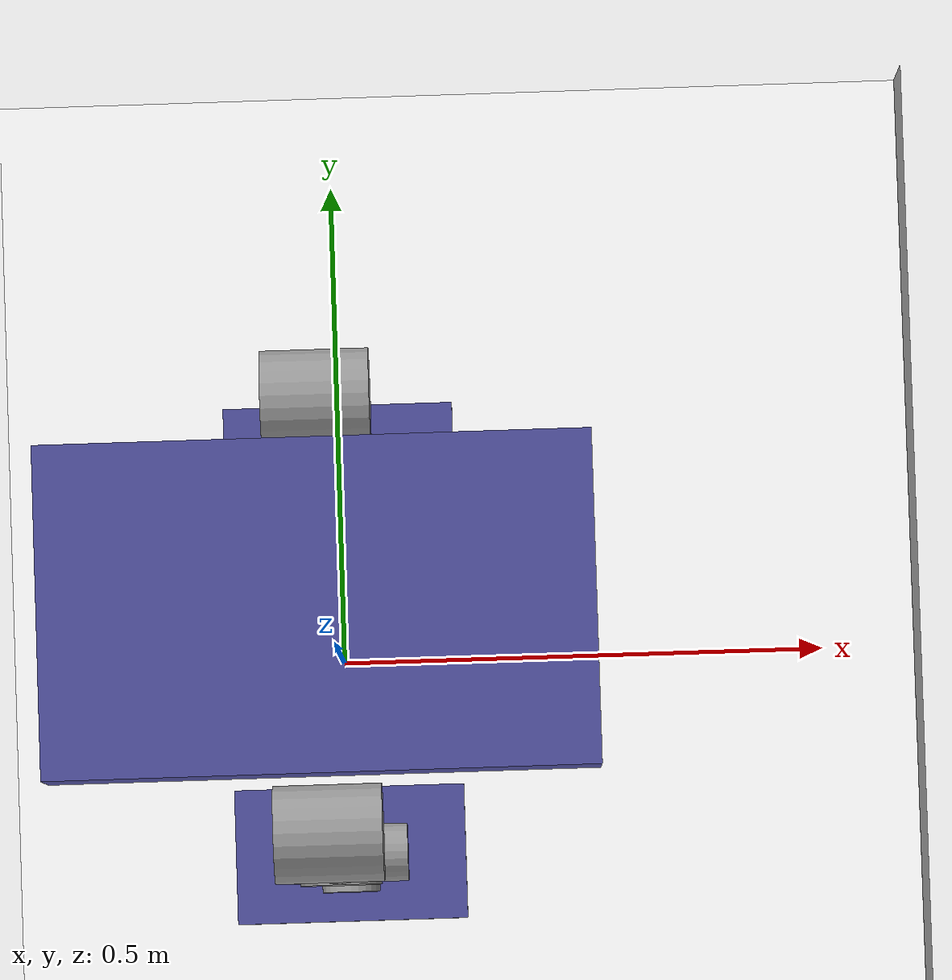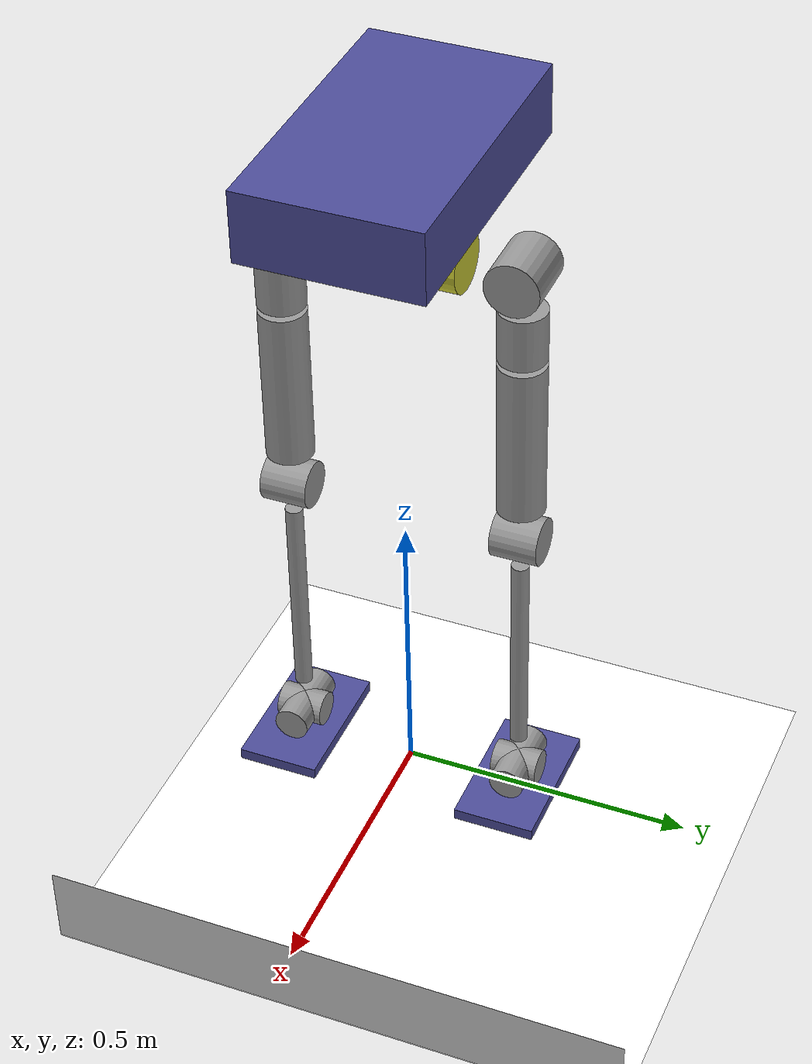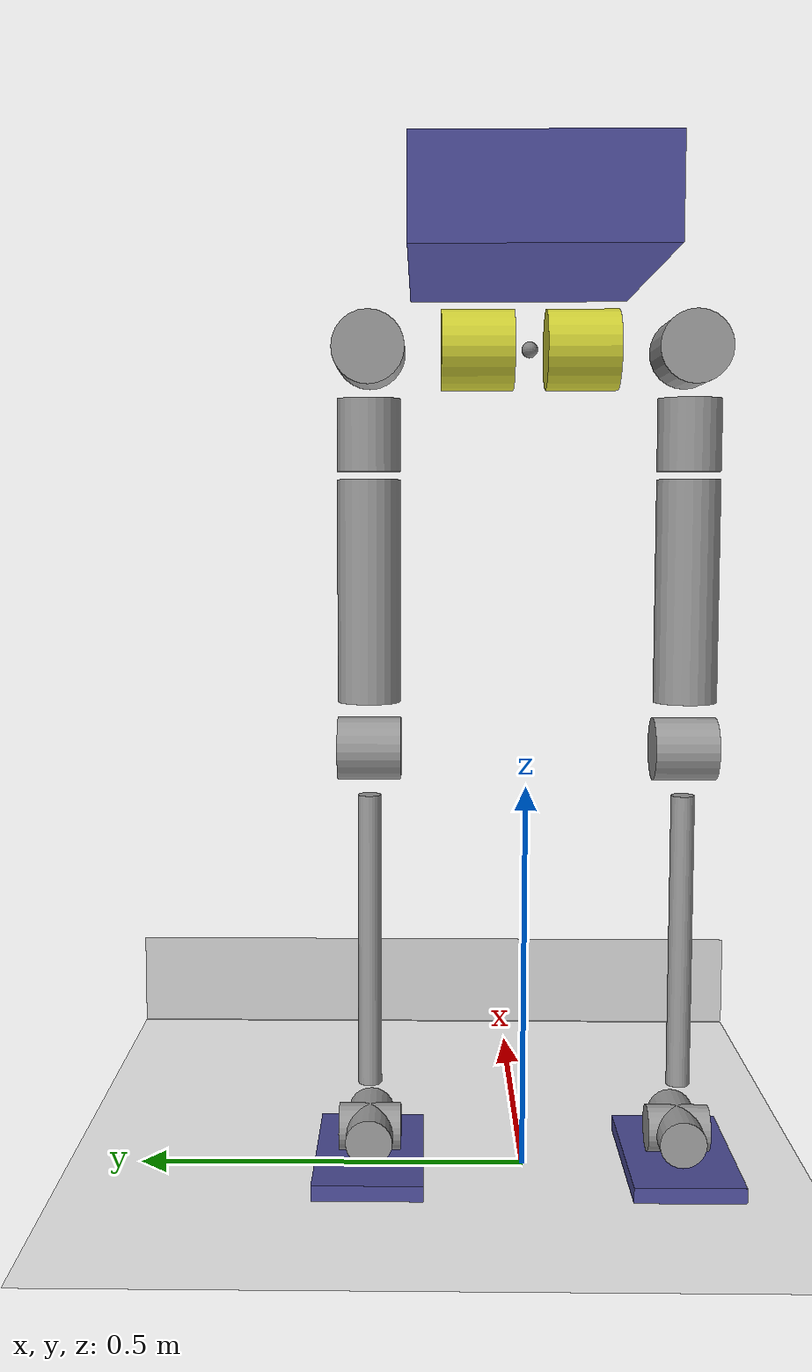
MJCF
<mujoco>

  <include file="zen.xml"/>

  <asset>
    <texture name="texplane" type="2d" builtin="checker" rgb1="1 1 1" rgb2="1 1 1" width="512" height="512" mark="cross" markrgb="0 0 0"/>
    <material name="matplane" reflectance="0.0" texture="texplane" texrepeat="1 1" texuniform="true"/>
  </asset>

  <worldbody>
    <geom group="1" name="floor" pos="0 0 0" size="0 0 0.25" type="plane" material="matplane" condim="3" contype="2" conaffinity="1"/>
    <geom group="1" type="box" pos=" 4.0 0 0.07" size="2.00 2.00 0.07" rgba="0.8 0.8 0.8 1" friction="1 0.005 0.0001" contype="2" conaffinity="1"/>
  </worldbody>

</mujoco>

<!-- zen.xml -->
<mujoco>
  <compiler coordinate="local" angle="degree"/>
  <option timestep="0.001" iterations="100" tolerance="1e-10" solver="Newton" integrator="implicit" gravity="0 0 -9.81"/>

  <visual>
    <map stiffness="2" stiffnessrot="100"/>
    <rgba haze="0.5 0.5 0.5 1"/>
    <quality shadowsize="2048" offsamples="16"/>
    <headlight ambient="0.5 0.5 0.5"  diffuse="0.4 0.4 0.4" specular="0.5 0.5 0.5"/>
  </visual>

  <asset>
    <texture type="skybox" builtin="gradient" rgb1="0.5 0.5 0.5" rgb2="0.5 0.5 0.5" width="512" height="512"/>
  </asset>

  <worldbody>
    <light mode="trackcom" target="model" directional="false" diffuse="0.3 0.3 0.3" specular="0.5 0.5 0.5" pos="4 0 4.0" dir="-1 0 -1" castshadow="true"/>

    <body name="model">
      <freejoint/>
      <geom type="box" pos="0 0 1.2" size="0.25 0.15 0.06" mass="10" rgba="0.3 0.3 0.6 1" contype="1" conaffinity="2"/>

      <site name="ahrs" pos="0 0 1.2" euler="0 0 0" type="sphere" size="0.01"/>
      <site name="base" pos="0 0 1.05" euler="0 0 0" type="sphere" size="0.01"/>

      <body pos="0 0.10 1.05">
	<joint name="joint1" type="hinge" pos="0 0 0" axis="0 -1 0" frictionloss="0.2" damping="0.5"/>
	<geom type="cylinder" fromto="0 -0.08 0 0 0.01 0" size="0.05" euler="90 0 0" mass="1.5" rgba="0.8 0.8 0.2 1" contype="1" conaffinity="2"/>
	<body>
	  <joint name="joint2" type="hinge" pos="0 0.10 0" axis="1 0 0" frictionloss="0.2" damping="0.5"/>
	  <geom type="cylinder" pos="0 0.10 0" euler="0 90 0" size="0.045 0.05" mass="1.5" rgba="0.6 0.6 0.6 1" contype="1" conaffinity="2"/>
	  <body>
	    <joint name="joint3" type="hinge" pos="0 0.10 -0.10" axis="0 0 1" frictionloss="0.2" damping="0.5"/>
	    <geom type="cylinder" fromto="0 0.10 -0.06   0 0.10 -0.15" size="0.04" mass="1.5" rgba="0.6 0.6 0.6 1" contype="1" conaffinity="2"/>
	    <geom type="cylinder" fromto="0 0.10 -0.16  0 0.10 -0.44" size="0.04" mass="1.0" rgba="0.6 0.6 0.6 1" contype="1" conaffinity="2"/>
	    <body>
	      <joint name="joint4" type="hinge" pos="0 0.10 -0.5" axis="0 -1 0" frictionloss="0.2" damping="0.5"/>
	      <geom type="cylinder" pos="0 0.10 -0.5" euler="90 0 0" size="0.04 0.04" mass="1.5" rgba="0.6 0.6 0.6 1" contype="1" conaffinity="2"/>
	      <geom type="cylinder" fromto="0 0.10 -0.56  0 0.10 -0.94" size="0.015" mass="0.5" rgba="0.6 0.6 0.6 1" contype="0" conaffinity="0"/>
	      <body>
		<joint name="joint5" type="hinge" pos="0 0.10 -1.0" axis="0 -1 0" frictionloss="0.2" damping="0.5"/>
		<geom type="cylinder" pos="0 0.10 -1.0" euler="90 0 0" size="0.03 0.04" mass="1.0" rgba="0.6 0.6 0.6 1" contype="0" conaffinity="0"/>
		<body>
		  <joint name="joint6" type="hinge" pos="0 0.10 -1.0" axis="1 0 0" frictionloss="0.2" damping="0.5"/>
		  <geom type="cylinder" pos="0 0.10 -1.0" euler="0 90 0" size="0.03 0.06" mass="0.75" rgba="0.6 0.6 0.6 1" contype="0" conaffinity="0"/>
		  <body>
		    <geom type="box" pos="0 0.10 -1.04" size="0.12 0.07 0.01" mass="0.70" rgba="0.3 0.3 0.6 1" contype="0" conaffinity="0"/>
		    <body>
 		      <geom type="box" pos="0 0.10 -1.04" size="0.12 0.07 0.01" mass="0.05" rgba="0.3 0.3 0.6 1" friction="1 0.005 0.0001" contype="1" conaffinity="2"/>
		      <site name="endtip1" pos="0 0.10 -1.0" euler="0 0 0" type="sphere" size="0.01"/>
		    </body>
		  </body>
		</body>
	      </body>
	    </body>
	  </body>
	</body>
      </body>

      <body pos="0 -0.10 1.05">
	<joint name="joint7" type="hinge" pos="0 0 0" axis="0 -1 0" frictionloss="0.2" damping="0.5"/>
	<geom type="cylinder" fromto="0 -0.01 0 0 0.08 0" size="0.05" euler="90 0 0" mass="1.5" rgba="0.8 0.8 0.2 1" contype="1" conaffinity="2"/>
	<body>
	  <joint name="joint8" type="hinge" pos="0 -0.10 0" axis="-1 0 0" frictionloss="0.2" damping="0.5"/>
	  <geom type="cylinder" pos="0 -0.10 0" euler="0 90 0" size="0.045 0.05" mass="1.5" rgba="0.6 0.6 0.6 1" contype="1" conaffinity="2"/>
	  <body>
	    <joint name="joint9" type="hinge" pos="0 -0.10 -0.10" axis="0 0 -1" frictionloss="0.2" damping="0.5"/>
	    <geom type="cylinder" fromto="0 -0.10 -0.06  0 -0.10 -0.15" size="0.04" mass="1.5" rgba="0.6 0.6 0.6 1" contype="1" conaffinity="2"/>
	    <geom type="cylinder" fromto="0 -0.10 -0.16  0 -0.10 -0.44" size="0.04" mass="1.0" rgba="0.6 0.6 0.6 1" contype="1" conaffinity="2"/>
	    <body>
	      <joint name="joint10" type="hinge" pos="0 -0.10 -0.5" axis="0 -1 0" frictionloss="0.2" damping="0.5"/>
	      <geom type="cylinder" pos="0 -0.10 -0.5" euler="90 0 0" size="0.04 0.04" mass="1.5" rgba="0.6 0.6 0.6 1" contype="1" conaffinity="2"/>
	      <geom type="cylinder" fromto="0 -0.10 -0.56  0 -0.10 -0.94" size="0.015" mass="0.5" rgba="0.6 0.6 0.6 1" contype="0" conaffinity="0"/>
	      <body>
		<joint name="joint11" type="hinge" pos="0 -0.10 -1.0" axis="0 -1 0" frictionloss="0.2" damping="0.5"/>
		<geom type="cylinder" pos="0 -0.10 -1.0" euler="90 0 0" size="0.03 0.04" mass="1.0" rgba="0.6 0.6 0.6 1" contype="0" conaffinity="0"/>
		<body>
		  <joint name="joint12" type="hinge" pos="0 -0.10 -1.0" axis="-1 0 0" frictionloss="0.2" damping="0.5"/>
		  <geom type="cylinder" pos="0 -0.10 -1.0" euler="0 90 0" size="0.03 0.06" mass="0.75" rgba="0.6 0.6 0.6 1" contype="0" conaffinity="0"/>
		  <body>
		    <geom type="box" pos="0 -0.10 -1.04" size="0.12 0.07 0.01" mass="0.70" rgba="0.3 0.3 0.6 1" contype="0" conaffinity="0"/>
		    <body>
		      <geom type="box" pos="0 -0.10 -1.04" size="0.12 0.07 0.01" mass="0.05" rgba="0.3 0.3 0.6 1" friction="1 0.005 0.0001" contype="1" conaffinity="2"/>
		      <site name="endtip2" pos="0 -0.10 -1.0" euler="0 0 0" type="sphere" size="0.01"/>
		    </body>
		  </body>
		</body>
	      </body>
	    </body>
	  </body>
	</body>
      </body>

    </body>

  </worldbody>

  <equality>
    <weld body1="model" active="true"/>
  </equality>

  <actuator>
    <!-- motor: feedforward torque channel (ctrl = tau, paired 1:1 with position below) -->
    <motor joint="joint1" />
    <motor joint="joint2" />
    <motor joint="joint3" />
    <motor joint="joint4" />
    <motor joint="joint5" />
    <motor joint="joint6" />
    <motor joint="joint7" />
    <motor joint="joint8" />
    <motor joint="joint9" />
    <motor joint="joint10" />
    <motor joint="joint11" />
    <motor joint="joint12" />

    <position joint="joint1"  kp="1000" kv="20"/>
    <position joint="joint2"  kp="1000" kv="20"/>
    <position joint="joint3"  kp="1000" kv="20"/>
    <position joint="joint4"  kp="1000" kv="20"/>
    <position joint="joint5"  kp="1000" kv="20"/>
    <position joint="joint6"  kp="1000" kv="20"/>
    <position joint="joint7"  kp="1000" kv="20"/>
    <position joint="joint8"  kp="1000" kv="20"/>
    <position joint="joint9"  kp="1000" kv="20"/>
    <position joint="joint10" kp="1000" kv="20"/>
    <position joint="joint11" kp="1000" kv="20"/>
    <position joint="joint12" kp="1000" kv="20"/>

  </actuator>

  <sensor>
    <jointpos joint="joint1"/>
    <jointpos joint="joint2"/>
    <jointpos joint="joint3"/>
    <jointpos joint="joint4"/>
    <jointpos joint="joint5"/>
    <jointpos joint="joint6"/>
    <jointpos joint="joint7"/>
    <jointpos joint="joint8"/>
    <jointpos joint="joint9"/>
    <jointpos joint="joint10"/>
    <jointpos joint="joint11"/>
    <jointpos joint="joint12"/>

    <jointvel joint="joint1"/>
    <jointvel joint="joint2"/>
    <jointvel joint="joint3"/>
    <jointvel joint="joint4"/>
    <jointvel joint="joint5"/>
    <jointvel joint="joint6"/>
    <jointvel joint="joint7"/>
    <jointvel joint="joint8"/>
    <jointvel joint="joint9"/>
    <jointvel joint="joint10"/>
    <jointvel joint="joint11"/>
    <jointvel joint="joint12"/>

    <force  site="endtip1"/>
    <torque site="endtip1"/>

    <force  site="endtip2"/>
    <torque site="endtip2"/>

    <framequat objtype="site" objname="ahrs"/>
    <accelerometer site="ahrs"/>
    <gyro site="ahrs"/>

    <framelinvel objtype="site" objname="ahrs"/>
    <framepos objtype="site" objname="base"/>

  </sensor>
</mujoco>
